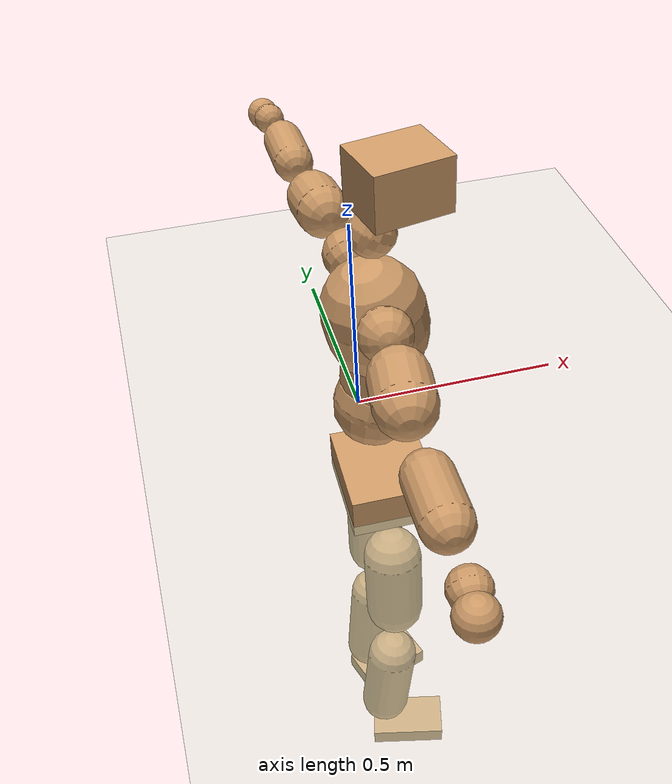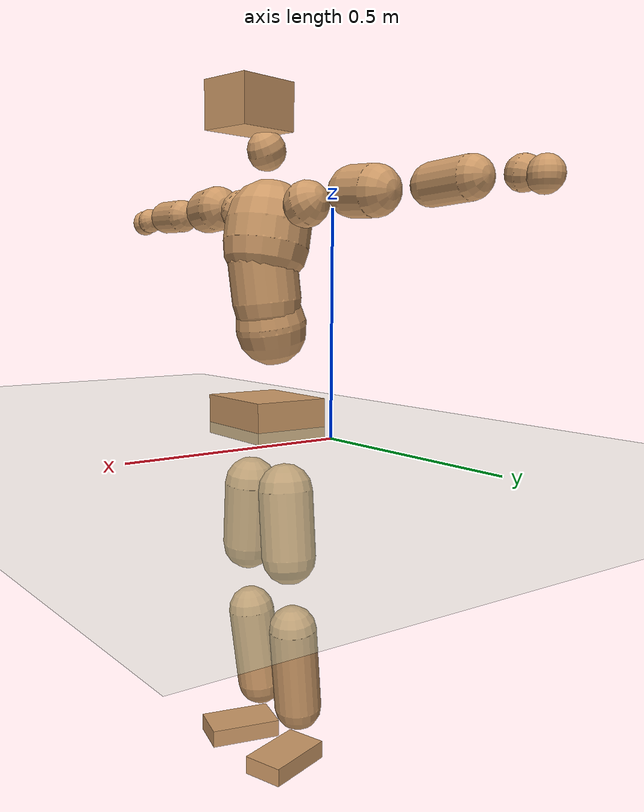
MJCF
<mujoco model="humanoid">
  <compiler coordinate="local" angle="radian"/>
  <default>
    <joint damping="0.0" armature="0.01" stiffness="0.0" limited="true"/>
    <geom conaffinity="1" condim="3" contype="7" margin="0.001" rgba="0.8 0.6 .4 1"/>
  </default>
  <asset>
    <texture type="skybox" builtin="gradient" rgb1=".4 .5 .6" rgb2="0 0 0" width="100" height="100"/>
    <texture builtin="flat" height="1278" mark="cross" markrgb="1 1 1" name="texgeom" random="0.01" rgb1="0.8 0.6 0.4" rgb2="0.8 0.6 0.4" type="cube" width="127"/>
    <texture builtin="checker" height="100" name="texplane" rgb1="0 0 0" rgb2="0.8 0.8 0.8" type="2d" width="100"/>
    <material name="MatPlane" reflectance="0.5" shininess="1" specular="1" texrepeat="60 60" texture="texplane"/>
    <material name="geom" texture="texgeom" texuniform="true"/>
  </asset>
  <worldbody>
    <light cutoff="100" diffuse="1 1 1" dir="-0 0 -1.3" directional="true" exponent="1" pos="0 0 1.3" specular=".1 .1 .1"/>
    <geom conaffinity="1" condim="3" name="floor" pos="0 0 0" rgba="0.8 0.9 0.8 1" size="100 100 .2" type="plane" material="MatPlane"/>
    <body name="Pelvis" pos="-0.0006 -0.279 0.0268">
      <freejoint name="Pelvis"/>
      <geom type="box" contype="1" conaffinity="1" density="5359.374265" pos="-0.0124 0.0003 -0.0084" size="0.0954 0.115 0.0486" quat="0.9999 0.0000 0.0000 -0.0126" name="Pelvis"/>
      <body name="L_Hip" pos="-0.0191 0.0656 -0.0882">
        <joint name="L_Hip_x" type="hinge" pos="0 0 0" axis="1 0 0" stiffness="1600" damping="160" armature="0.02" range="-180.0000 180.0000"/>
        <joint name="L_Hip_y" type="hinge" pos="0 0 0" axis="0 1 0" stiffness="1600" damping="160" armature="0.02" range="-180.0000 180.0000"/>
        <joint name="L_Hip_z" type="hinge" pos="0 0 0" axis="0 0 1" stiffness="1600" damping="160" armature="0.02" range="-180.0000 180.0000"/>
        <geom type="capsule" contype="1" conaffinity="1" density="2040.816327" size="0.067" fromto="0.0014 0.0101 -0.0965 0.0037 0.0273 -0.2620" name="L_Hip"/>
        <body name="L_Knee" pos="0.0051 0.0374 -0.3584">
          <joint name="L_Knee_x" type="hinge" pos="0 0 0" axis="1 0 0" stiffness="1600" damping="160" armature="0.02" range="-180.0000 180.0000"/>
          <joint name="L_Knee_y" type="hinge" pos="0 0 0" axis="0 1 0" stiffness="1600" damping="160" armature="0.02" range="-180.0000 180.0000"/>
          <joint name="L_Knee_z" type="hinge" pos="0 0 0" axis="0 0 1" stiffness="1600" damping="160" armature="0.02" range="-180.0000 180.0000"/>
          <geom type="capsule" contype="1" conaffinity="1" density="1234.567901" size="0.0595" fromto="-0.0093 -0.0036 -0.0889 -0.0317 -0.0123 -0.3029" name="L_Knee"/>
          <body name="L_Ankle" pos="-0.041 -0.0159 -0.3919">
            <joint name="L_Ankle_x" type="hinge" pos="0 0 0" axis="1 0 0" stiffness="1600" damping="160" armature="0.02" range="-180.0000 180.0000"/>
            <joint name="L_Ankle_y" type="hinge" pos="0 0 0" axis="0 1 0" stiffness="1600" damping="160" armature="0.02" range="-180.0000 180.0000"/>
            <joint name="L_Ankle_z" type="hinge" pos="0 0 0" axis="0 0 1" stiffness="1600" damping="160" armature="0.02" range="-180.0000 180.0000"/>
            <geom type="box" contype="1" conaffinity="1" density="999.999947" pos="0.0612 0.0185 -0.0291" size="0.0897 0.0517 0.0227" quat="0.9893 0.0000 0.0000 0.1460" name="L_Ankle"/>
            <body name="L_Toe" pos="0.1224 0.0369 -0.0582">
              <joint name="L_Toe_x" type="hinge" pos="0 0 0" axis="1 0 0" stiffness="1000" damping="100" armature="0.02" range="-180.0000 180.0000"/>
              <joint name="L_Toe_y" type="hinge" pos="0 0 0" axis="0 1 0" stiffness="1000" damping="100" armature="0.02" range="-180.0000 180.0000"/>
              <joint name="L_Toe_z" type="hinge" pos="0 0 0" axis="0 0 1" stiffness="1000" damping="100" armature="0.02" range="-180.0000 180.0000"/>
              <geom type="box" contype="1" conaffinity="1" density="8191307.498326" pos="0.0000 0.0000 0.0283" size="0.0011 0.0026 0.0011" quat="0.9885 0.0000 0.0000 0.1511" name="L_Toe"/>
            </body>
          </body>
        </body>
      </body>
      <body name="R_Hip" pos="-0.0151 -0.0675 -0.0957">
        <joint name="R_Hip_x" type="hinge" pos="0 0 0" axis="1 0 0" stiffness="1600" damping="160" armature="0.02" range="-180.0000 180.0000"/>
        <joint name="R_Hip_y" type="hinge" pos="0 0 0" axis="0 1 0" stiffness="1600" damping="160" armature="0.02" range="-180.0000 180.0000"/>
        <joint name="R_Hip_z" type="hinge" pos="0 0 0" axis="0 0 1" stiffness="1600" damping="160" armature="0.02" range="-180.0000 180.0000"/>
        <geom type="capsule" contype="1" conaffinity="1" density="2040.816327" size="0.0668" fromto="-0.0017 -0.0103 -0.0963 -0.0045 -0.0279 -0.2608" name="R_Hip"/>
        <body name="R_Knee" pos="-0.0062 -0.0382 -0.3571">
          <joint name="R_Knee_x" type="hinge" pos="0 0 0" axis="1 0 0" stiffness="1600" damping="160" armature="0.02" range="-180.0000 180.0000"/>
          <joint name="R_Knee_y" type="hinge" pos="0 0 0" axis="0 1 0" stiffness="1600" damping="160" armature="0.02" range="-180.0000 180.0000"/>
          <joint name="R_Knee_z" type="hinge" pos="0 0 0" axis="0 0 1" stiffness="1600" damping="160" armature="0.02" range="-180.0000 180.0000"/>
          <geom type="capsule" contype="1" conaffinity="1" density="1234.567901" size="0.0596" fromto="-0.0089 0.0044 -0.0891 -0.0298 0.0147 -0.2964" name="R_Knee"/>
          <body name="R_Ankle" pos="-0.0387 0.0191 -0.3855">
            <joint name="R_Ankle_x" type="hinge" pos="0 0 0" axis="1 0 0" stiffness="1600" damping="160" armature="0.02" range="-180.0000 180.0000"/>
            <joint name="R_Ankle_y" type="hinge" pos="0 0 0" axis="0 1 0" stiffness="1600" damping="160" armature="0.02" range="-180.0000 180.0000"/>
            <joint name="R_Ankle_z" type="hinge" pos="0 0 0" axis="0 0 1" stiffness="1600" damping="160" armature="0.02" range="-180.0000 180.0000"/>
            <geom type="box" contype="1" conaffinity="1" density="1000.000017" pos="0.0659 -0.0172 -0.0289" size="0.0912 0.0542 0.0221" quat="0.9919 0.0000 0.0000 -0.1270" name="R_Ankle"/>
            <body name="R_Toe" pos="0.1318 -0.0343 -0.0578">
              <joint name="R_Toe_x" type="hinge" pos="0 0 0" axis="1 0 0" stiffness="1000" damping="100" armature="0.02" range="-180.0000 180.0000"/>
              <joint name="R_Toe_y" type="hinge" pos="0 0 0" axis="0 1 0" stiffness="1000" damping="100" armature="0.02" range="-180.0000 180.0000"/>
              <joint name="R_Toe_z" type="hinge" pos="0 0 0" axis="0 0 1" stiffness="1000" damping="100" armature="0.02" range="-180.0000 180.0000"/>
              <geom type="box" contype="1" conaffinity="1" density="7651350.485429" pos="0.0000 0.0000 0.0305" size="0.0011 0.0027 0.0012" quat="0.9930 0.0000 0.0000 -0.1182" name="R_Toe"/>
            </body>
          </body>
        </body>
      </body>
      <body name="Torso" pos="-0.0403 0.0038 0.1335">
        <joint name="Torso_x" type="hinge" pos="0 0 0" axis="1 0 0" stiffness="2000" damping="200" armature="0.02" range="-180.0000 180.0000"/>
        <joint name="Torso_y" type="hinge" pos="0 0 0" axis="0 1 0" stiffness="2000" damping="200" armature="0.02" range="-180.0000 180.0000"/>
        <joint name="Torso_z" type="hinge" pos="0 0 0" axis="0 0 1" stiffness="2000" damping="200" armature="0.02" range="-180.0000 180.0000"/>
        <geom type="capsule" contype="1" conaffinity="1" density="2040.816327" size="0.0868" fromto="0.0179 0.0031 0.0849 0.0149 0.0026 0.0708" name="Torso"/>
        <body name="Spine" pos="0.0328 0.0057 0.1557">
          <joint name="Spine_x" type="hinge" pos="0 0 0" axis="1 0 0" stiffness="2000" damping="200" armature="0.02" range="-180.0000 180.0000"/>
          <joint name="Spine_y" type="hinge" pos="0 0 0" axis="0 1 0" stiffness="2000" damping="200" armature="0.02" range="-180.0000 180.0000"/>
          <joint name="Spine_z" type="hinge" pos="0 0 0" axis="0 0 1" stiffness="2000" damping="200" armature="0.02" range="-180.0000 180.0000"/>
          <geom type="capsule" contype="1" conaffinity="1" density="2040.816327" size="0.084" fromto="0.0082 -0.0038 0.0835 -0.0019 0.0009 -0.0192" name="Spine"/>
          <body name="Chest" pos="0.0063 -0.0029 0.0643">
            <joint name="Chest_x" type="hinge" pos="0 0 0" axis="1 0 0" stiffness="2000" damping="200" armature="0.02" range="-180.0000 180.0000"/>
            <joint name="Chest_y" type="hinge" pos="0 0 0" axis="0 1 0" stiffness="2000" damping="200" armature="0.02" range="-180.0000 180.0000"/>
            <joint name="Chest_z" type="hinge" pos="0 0 0" axis="0 0 1" stiffness="2000" damping="200" armature="0.02" range="-180.0000 180.0000"/>
            <geom type="capsule" contype="1" conaffinity="1" density="2040.816327" size="0.1046" fromto="-0.0203 -0.0054 0.1024 -0.0102 -0.0027 0.0515" name="Chest"/>
            <body name="Neck" pos="-0.0428 -0.0123 0.2252">
              <joint name="Neck_x" type="hinge" pos="0 0 0" axis="1 0 0" stiffness="1000" damping="100" armature="0.02" range="-180.0000 180.0000"/>
              <joint name="Neck_y" type="hinge" pos="0 0 0" axis="0 1 0" stiffness="1000" damping="100" armature="0.02" range="-180.0000 180.0000"/>
              <joint name="Neck_z" type="hinge" pos="0 0 0" axis="0 0 1" stiffness="1000" damping="100" armature="0.02" range="-180.0000 180.0000"/>
              <geom type="capsule" contype="1" conaffinity="1" density="1000" size="0.0467" fromto="0.0259 0.0046 0.0456 0.0269 0.0048 0.0473" name="Neck"/>
              <body name="Head" pos="0.0528 0.0094 0.0929">
                <joint name="Head_x" type="hinge" pos="0 0 0" axis="1 0 0" stiffness="1000" damping="100" armature="0.02" range="-180.0000 180.0000"/>
                <joint name="Head_y" type="hinge" pos="0 0 0" axis="0 1 0" stiffness="1000" damping="100" armature="0.02" range="-180.0000 180.0000"/>
                <joint name="Head_z" type="hinge" pos="0 0 0" axis="0 0 1" stiffness="1000" damping="100" armature="0.02" range="-180.0000 180.0000"/>
                <geom type="box" contype="1" conaffinity="1" density="2250.000116" pos="0.0274 0.0057 0.0474" size="0.0807 0.0654 0.056" quat="0.9947 0.0000 0.0000 0.1028" name="Head"/>
              </body>
            </body>
            <body name="L_Thorax" pos="-0.0217 0.0707 0.1192">
              <joint name="L_Thorax_x" type="hinge" pos="0 0 0" axis="1 0 0" stiffness="1000" damping="100" armature="0.02" range="-180.0000 180.0000"/>
              <joint name="L_Thorax_y" type="hinge" pos="0 0 0" axis="0 1 0" stiffness="1000" damping="100" armature="0.02" range="-180.0000 180.0000"/>
              <joint name="L_Thorax_z" type="hinge" pos="0 0 0" axis="0 0 1" stiffness="1000" damping="100" armature="0.02" range="-180.0000 180.0000"/>
              <geom type="capsule" contype="1" conaffinity="1" density="1000" size="0.0537" fromto="-0.0098 0.0605 0.0209 -0.0101 0.0623 0.0216" name="L_Thorax"/>
              <body name="L_Shoulder" pos="-0.0198 0.1228 0.0425">
                <joint name="L_Shoulder_x" type="hinge" pos="0 0 0" axis="1 0 0" stiffness="1000" damping="100" armature="0.02" range="-720.0000 720.0000"/>
                <joint name="L_Shoulder_y" type="hinge" pos="0 0 0" axis="0 1 0" stiffness="1000" damping="100" armature="0.02" range="-720.0000 720.0000"/>
                <joint name="L_Shoulder_z" type="hinge" pos="0 0 0" axis="0 0 1" stiffness="1000" damping="100" armature="0.02" range="-720.0000 720.0000"/>
                <geom type="capsule" contype="1" conaffinity="1" density="1000" size="0.0566" fromto="-0.0072 0.0862 -0.0043 -0.0128 0.1532 -0.0077" name="L_Shoulder"/>
                <body name="L_Elbow" pos="-0.02 0.2394 -0.012">
                  <joint name="L_Elbow_x" type="hinge" pos="0 0 0" axis="1 0 0" stiffness="1000" damping="100" armature="0.02" range="-720.0000 720.0000"/>
                  <joint name="L_Elbow_y" type="hinge" pos="0 0 0" axis="0 1 0" stiffness="1000" damping="100" armature="0.02" range="-720.0000 720.0000"/>
                  <joint name="L_Elbow_z" type="hinge" pos="0 0 0" axis="0 0 1" stiffness="1000" damping="100" armature="0.02" range="-720.0000 720.0000"/>
                  <geom type="capsule" contype="1" conaffinity="1" density="1000" size="0.0441" fromto="-0.0020 0.0740 0.0034 -0.0047 0.1766 0.0081" name="L_Elbow"/>
                  <body name="L_Wrist" pos="-0.0066 0.2506 0.0115">
                    <joint name="L_Wrist_x" type="hinge" pos="0 0 0" axis="1 0 0" stiffness="600" damping="60" armature="0.02" range="-180.0000 180.0000"/>
                    <joint name="L_Wrist_y" type="hinge" pos="0 0 0" axis="0 1 0" stiffness="600" damping="60" armature="0.02" range="-180.0000 180.0000"/>
                    <joint name="L_Wrist_z" type="hinge" pos="0 0 0" axis="0 0 1" stiffness="600" damping="60" armature="0.02" range="-180.0000 180.0000"/>
                    <geom type="capsule" contype="1" conaffinity="1" density="1000" size="0.0344" fromto="-0.0074 0.0418 -0.0052 -0.0077 0.0438 -0.0055" name="L_Wrist"/>
                    <body name="L_Hand" pos="-0.0151 0.0856 -0.0107">
                      <joint name="L_Hand_x" type="hinge" pos="0 0 0" axis="1 0 0" stiffness="600" damping="60" armature="0.02" range="-180.0000 180.0000"/>
                      <joint name="L_Hand_y" type="hinge" pos="0 0 0" axis="0 1 0" stiffness="600" damping="60" armature="0.02" range="-180.0000 180.0000"/>
                      <joint name="L_Hand_z" type="hinge" pos="0 0 0" axis="0 0 1" stiffness="600" damping="60" armature="0.02" range="-180.0000 180.0000"/>
                      <geom type="sphere" contype="1" conaffinity="1" density="1000" size="0.0354" pos="0.0000 0.0000 0.0000" name="L_Hand"/>
                    </body>
                  </body>
                </body>
              </body>
            </body>
            <body name="R_Thorax" pos="-0.0272 -0.0828 0.1175">
              <joint name="R_Thorax_x" type="hinge" pos="0 0 0" axis="1 0 0" stiffness="1000" damping="100" armature="0.02" range="-180.0000 180.0000"/>
              <joint name="R_Thorax_y" type="hinge" pos="0 0 0" axis="0 1 0" stiffness="1000" damping="100" armature="0.02" range="-180.0000 180.0000"/>
              <joint name="R_Thorax_z" type="hinge" pos="0 0 0" axis="0 0 1" stiffness="1000" damping="100" armature="0.02" range="-180.0000 180.0000"/>
              <geom type="capsule" contype="1" conaffinity="1" density="1000" size="0.0539" fromto="-0.0044 -0.0567 0.0215 -0.0046 -0.0586 0.0222" name="R_Thorax"/>
              <body name="R_Shoulder" pos="-0.009 -0.1153 0.0437">
                <joint name="R_Shoulder_x" type="hinge" pos="0 0 0" axis="1 0 0" stiffness="1000" damping="100" armature="0.02" range="-720.0000 720.0000"/>
                <joint name="R_Shoulder_y" type="hinge" pos="0 0 0" axis="0 1 0" stiffness="1000" damping="100" armature="0.02" range="-720.0000 720.0000"/>
                <joint name="R_Shoulder_z" type="hinge" pos="0 0 0" axis="0 0 1" stiffness="1000" damping="100" armature="0.02" range="-720.0000 720.0000"/>
                <geom type="capsule" contype="1" conaffinity="1" density="1000" size="0.0576" fromto="-0.0112 -0.0868 -0.0035 -0.0206 -0.1593 -0.0064" name="R_Shoulder"/>
                <body name="R_Elbow" pos="-0.0319 -0.246 -0.0098">
                  <joint name="R_Elbow_x" type="hinge" pos="0 0 0" axis="1 0 0" stiffness="1000" damping="100" armature="0.02" range="-720.0000 720.0000"/>
                  <joint name="R_Elbow_y" type="hinge" pos="0 0 0" axis="0 1 0" stiffness="1000" damping="100" armature="0.02" range="-720.0000 720.0000"/>
                  <joint name="R_Elbow_z" type="hinge" pos="0 0 0" axis="0 0 1" stiffness="1000" damping="100" armature="0.02" range="-720.0000 720.0000"/>
                  <geom type="capsule" contype="1" conaffinity="1" density="1000" size="0.0451" fromto="-0.0017 -0.0750 0.0013 -0.0042 -0.1801 0.0031" name="R_Elbow"/>
                  <body name="R_Wrist" pos="-0.0059 -0.2551 0.0044">
                    <joint name="R_Wrist_x" type="hinge" pos="0 0 0" axis="1 0 0" stiffness="600" damping="60" armature="0.02" range="-180.0000 180.0000"/>
                    <joint name="R_Wrist_y" type="hinge" pos="0 0 0" axis="0 1 0" stiffness="600" damping="60" armature="0.02" range="-180.0000 180.0000"/>
                    <joint name="R_Wrist_z" type="hinge" pos="0 0 0" axis="0 0 1" stiffness="600" damping="60" armature="0.02" range="-180.0000 180.0000"/>
                    <geom type="capsule" contype="1" conaffinity="1" density="1000" size="0.0356" fromto="-0.0047 -0.0437 -0.0043 -0.0049 -0.0457 -0.0045" name="R_Wrist"/>
                    <body name="R_Hand" pos="-0.0097 -0.0893 -0.0087">
                      <joint name="R_Hand_x" type="hinge" pos="0 0 0" axis="1 0 0" stiffness="600" damping="60" armature="0.02" range="-180.0000 180.0000"/>
                      <joint name="R_Hand_y" type="hinge" pos="0 0 0" axis="0 1 0" stiffness="600" damping="60" armature="0.02" range="-180.0000 180.0000"/>
                      <joint name="R_Hand_z" type="hinge" pos="0 0 0" axis="0 0 1" stiffness="600" damping="60" armature="0.02" range="-180.0000 180.0000"/>
                      <geom type="sphere" contype="1" conaffinity="1" density="1000" size="0.0365" pos="0.0000 0.0000 0.0000" name="R_Hand"/>
                    </body>
                  </body>
                </body>
              </body>
            </body>
          </body>
        </body>
      </body>
    </body>
  </worldbody>
  <actuator>
    <motor name="L_Hip_x" joint="L_Hip_x" gear="500"/>
    <motor name="L_Hip_y" joint="L_Hip_y" gear="500"/>
    <motor name="L_Hip_z" joint="L_Hip_z" gear="500"/>
    <motor name="L_Knee_x" joint="L_Knee_x" gear="500"/>
    <motor name="L_Knee_y" joint="L_Knee_y" gear="500"/>
    <motor name="L_Knee_z" joint="L_Knee_z" gear="500"/>
    <motor name="L_Ankle_x" joint="L_Ankle_x" gear="500"/>
    <motor name="L_Ankle_y" joint="L_Ankle_y" gear="500"/>
    <motor name="L_Ankle_z" joint="L_Ankle_z" gear="500"/>
    <motor name="L_Toe_x" joint="L_Toe_x" gear="500"/>
    <motor name="L_Toe_y" joint="L_Toe_y" gear="500"/>
    <motor name="L_Toe_z" joint="L_Toe_z" gear="500"/>
    <motor name="R_Hip_x" joint="R_Hip_x" gear="500"/>
    <motor name="R_Hip_y" joint="R_Hip_y" gear="500"/>
    <motor name="R_Hip_z" joint="R_Hip_z" gear="500"/>
    <motor name="R_Knee_x" joint="R_Knee_x" gear="500"/>
    <motor name="R_Knee_y" joint="R_Knee_y" gear="500"/>
    <motor name="R_Knee_z" joint="R_Knee_z" gear="500"/>
    <motor name="R_Ankle_x" joint="R_Ankle_x" gear="500"/>
    <motor name="R_Ankle_y" joint="R_Ankle_y" gear="500"/>
    <motor name="R_Ankle_z" joint="R_Ankle_z" gear="500"/>
    <motor name="R_Toe_x" joint="R_Toe_x" gear="500"/>
    <motor name="R_Toe_y" joint="R_Toe_y" gear="500"/>
    <motor name="R_Toe_z" joint="R_Toe_z" gear="500"/>
    <motor name="Torso_x" joint="Torso_x" gear="500"/>
    <motor name="Torso_y" joint="Torso_y" gear="500"/>
    <motor name="Torso_z" joint="Torso_z" gear="500"/>
    <motor name="Spine_x" joint="Spine_x" gear="500"/>
    <motor name="Spine_y" joint="Spine_y" gear="500"/>
    <motor name="Spine_z" joint="Spine_z" gear="500"/>
    <motor name="Chest_x" joint="Chest_x" gear="500"/>
    <motor name="Chest_y" joint="Chest_y" gear="500"/>
    <motor name="Chest_z" joint="Chest_z" gear="500"/>
    <motor name="Neck_x" joint="Neck_x" gear="500"/>
    <motor name="Neck_y" joint="Neck_y" gear="500"/>
    <motor name="Neck_z" joint="Neck_z" gear="500"/>
    <motor name="Head_x" joint="Head_x" gear="500"/>
    <motor name="Head_y" joint="Head_y" gear="500"/>
    <motor name="Head_z" joint="Head_z" gear="500"/>
    <motor name="L_Thorax_x" joint="L_Thorax_x" gear="500"/>
    <motor name="L_Thorax_y" joint="L_Thorax_y" gear="500"/>
    <motor name="L_Thorax_z" joint="L_Thorax_z" gear="500"/>
    <motor name="L_Shoulder_x" joint="L_Shoulder_x" gear="500"/>
    <motor name="L_Shoulder_y" joint="L_Shoulder_y" gear="500"/>
    <motor name="L_Shoulder_z" joint="L_Shoulder_z" gear="500"/>
    <motor name="L_Elbow_x" joint="L_Elbow_x" gear="500"/>
    <motor name="L_Elbow_y" joint="L_Elbow_y" gear="500"/>
    <motor name="L_Elbow_z" joint="L_Elbow_z" gear="500"/>
    <motor name="L_Wrist_x" joint="L_Wrist_x" gear="500"/>
    <motor name="L_Wrist_y" joint="L_Wrist_y" gear="500"/>
    <motor name="L_Wrist_z" joint="L_Wrist_z" gear="500"/>
    <motor name="L_Hand_x" joint="L_Hand_x" gear="500"/>
    <motor name="L_Hand_y" joint="L_Hand_y" gear="500"/>
    <motor name="L_Hand_z" joint="L_Hand_z" gear="500"/>
    <motor name="R_Thorax_x" joint="R_Thorax_x" gear="500"/>
    <motor name="R_Thorax_y" joint="R_Thorax_y" gear="500"/>
    <motor name="R_Thorax_z" joint="R_Thorax_z" gear="500"/>
    <motor name="R_Shoulder_x" joint="R_Shoulder_x" gear="500"/>
    <motor name="R_Shoulder_y" joint="R_Shoulder_y" gear="500"/>
    <motor name="R_Shoulder_z" joint="R_Shoulder_z" gear="500"/>
    <motor name="R_Elbow_x" joint="R_Elbow_x" gear="500"/>
    <motor name="R_Elbow_y" joint="R_Elbow_y" gear="500"/>
    <motor name="R_Elbow_z" joint="R_Elbow_z" gear="500"/>
    <motor name="R_Wrist_x" joint="R_Wrist_x" gear="500"/>
    <motor name="R_Wrist_y" joint="R_Wrist_y" gear="500"/>
    <motor name="R_Wrist_z" joint="R_Wrist_z" gear="500"/>
    <motor name="R_Hand_x" joint="R_Hand_x" gear="500"/>
    <motor name="R_Hand_y" joint="R_Hand_y" gear="500"/>
    <motor name="R_Hand_z" joint="R_Hand_z" gear="500"/>
  </actuator>
  <contact>
    <exclude body1="Torso" body2="Chest"/>
    <exclude body1="Head" body2="Chest"/>
    <exclude body1="R_Knee" body2="R_Toe"/>
    <exclude body1="R_Knee" body2="L_Ankle"/>
    <exclude body1="R_Knee" body2="L_Toe"/>
    <exclude body1="L_Knee" body2="L_Toe"/>
    <exclude body1="L_Knee" body2="R_Ankle"/>
    <exclude body1="L_Knee" body2="R_Toe"/>
    <exclude body1="L_Shoulder" body2="Chest"/>
    <exclude body1="R_Shoulder" body2="Chest"/>
  </contact>
  <sensor/>
  <size njmax="700" nconmax="700"/>
</mujoco>
